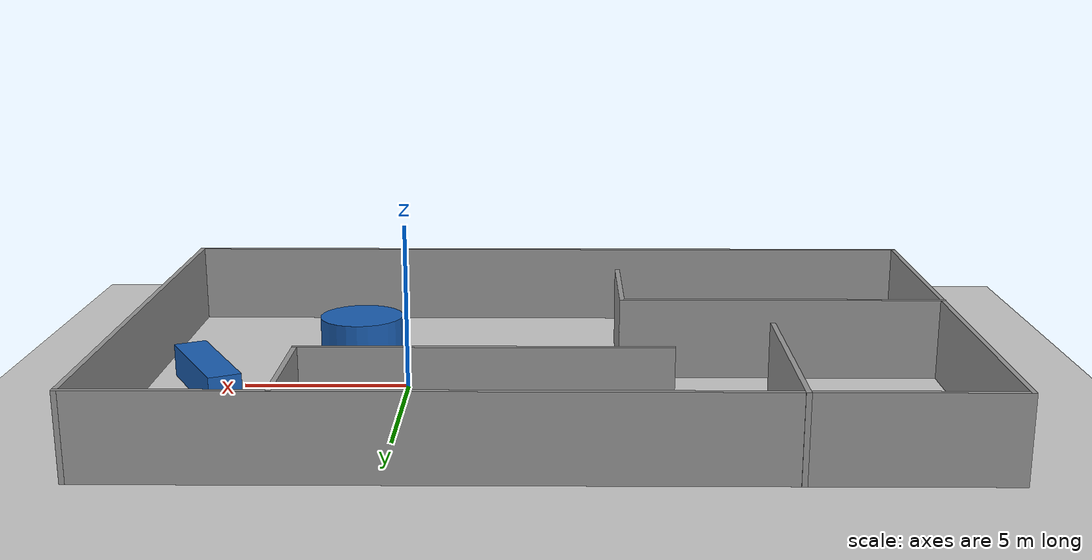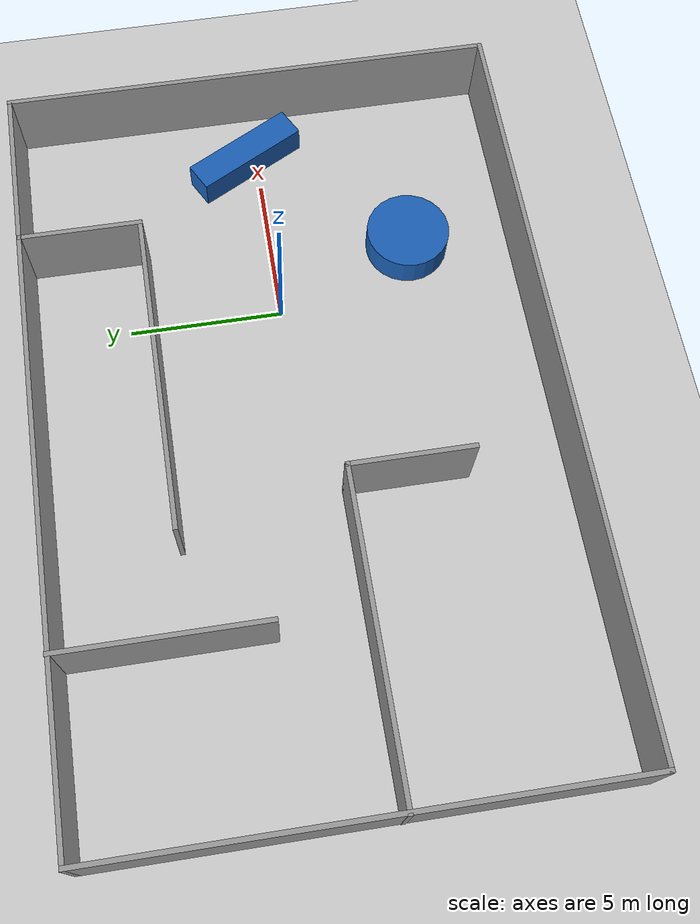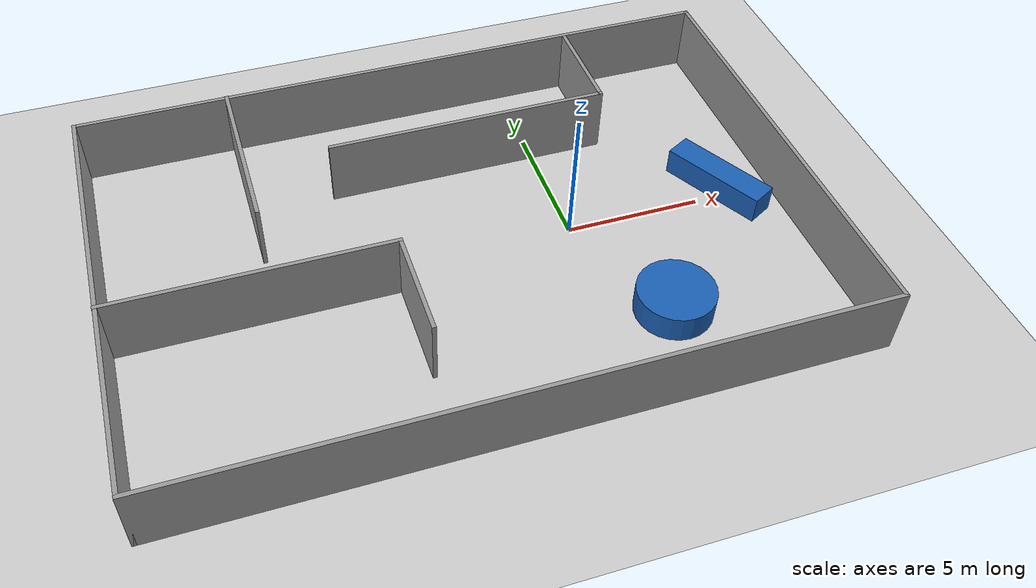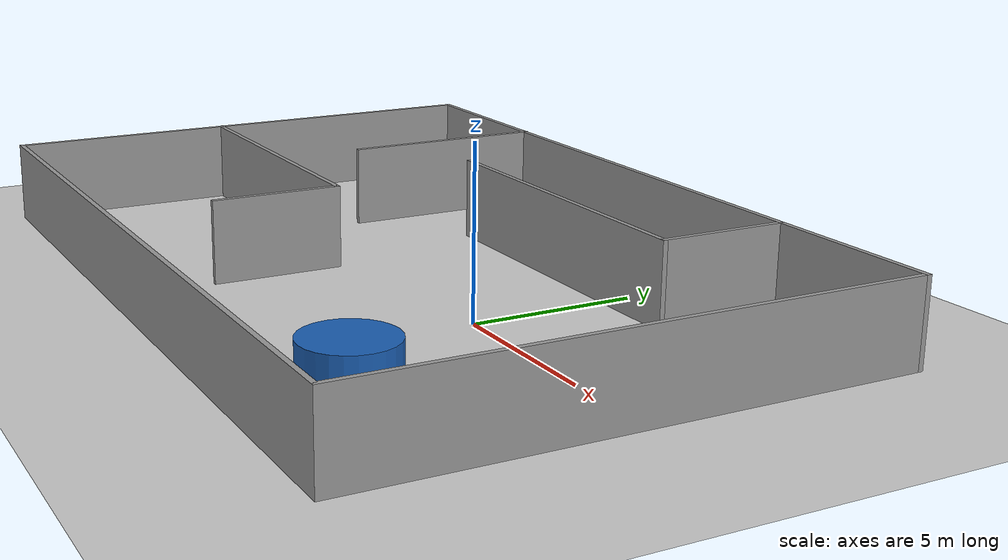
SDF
<sdf version="1.7">
 <world name="default">
  <light name="sun" type="directional">
   <pose>0 0 10 0 -0 0</pose>
   <diffuse>0.8 0.8 0.8 1</diffuse>
   <specular>0.2 0.2 0.2 1</specular>
   <attenuation>
    <range>1000</range>
    <constant>0.9</constant>
    <linear>0.01</linear>
    <quadratic>0.001</quadratic>
   </attenuation>
   <direction>-0.5 0.1 -0.9</direction>
   <spot><inner_angle>0</inner_angle><outer_angle>0</outer_angle><falloff>0</falloff></spot>
  </light>
  <model name="ground_plane">
   <static>1</static>
   <link name="link">
    <collision name="collision">
     <geometry><plane><normal>0 0 1</normal><size>100 100</size></plane></geometry>
     <surface>
      <contact><collide_bitmask>65535</collide_bitmask></contact>
      <friction><ode><mu>100</mu><mu2>50</mu2></ode></friction>
     </surface>
    </collision>
    <visual name="visual">
     <cast_shadows>0</cast_shadows>
     <geometry><plane><normal>0 0 1</normal><size>100 100</size></plane></geometry>
     <material>
      <script><uri>file://media/materials/scripts/gazebo.material</uri><name>Gazebo/Grey</name></script>
     </material>
    </visual>
   </link>
  </model>
  <gravity>0 0 -9.8</gravity>
  <magnetic_field>6e-06 2.3e-05 -4.2e-05</magnetic_field>
  <atmosphere type="adiabatic"/>
  <physics type="ode">
   <ode><solver><iters>100</iters><sor>1.3</sor></solver></ode>
   <max_step_size>0.002</max_step_size>
   <real_time_factor>1</real_time_factor>
   <real_time_update_rate>1000</real_time_update_rate>
  </physics>
  <scene><ambient>0.4 0.4 0.4 1</ambient><background>0.7 0.7 0.7 1</background><shadows>1</shadows></scene>
  <audio><device>default</device></audio>
  <spherical_coordinates>
   <surface_model>EARTH_WGS84</surface_model>
   <latitude_deg>0</latitude_deg>
   <longitude_deg>0</longitude_deg>
   <elevation>0</elevation>
   <heading_deg>0</heading_deg>
  </spherical_coordinates>
  <model name="simple_walls">
   <pose>-4.1815 -0.005065 0 0 -0 0</pose>
   <link name="Wall_1">
    <collision name="Wall_1_Collision">
     <geometry><box><size>24.5 0.15 2.5</size></box></geometry>
     <pose>0 0 1.25 0 -0 0</pose>
    </collision>
    <visual name="Wall_1_Visual">
     <pose>0 0 1.25 0 -0 0</pose>
     <geometry><box><size>24.5 0.15 2.5</size></box></geometry>
     <material>
      <script><uri>file://media/materials/scripts/gazebo.material</uri><name>Gazebo/Grey</name></script>
      <ambient>1 1 1 1</ambient>
     </material>
     <meta><layer>0</layer></meta>
    </visual>
    <pose>0.008207 -8.06068 0 0 -0 0</pose>
   </link>
   <link name="Wall_10">
    <collision name="Wall_10_Collision">
     <geometry><box><size>10 0.15 2.5</size></box></geometry>
     <pose>0 0 1.25 0 -0 0</pose>
    </collision>
    <visual name="Wall_10_Visual">
     <pose>0 0 1.25 0 -0 0</pose>
     <geometry><box><size>10 0.15 2.5</size></box></geometry>
     <material>
      <script><uri>file://media/materials/scripts/gazebo.material</uri><name>Gazebo/Grey</name></script>
      <ambient>1 1 1 1</ambient>
     </material>
     <meta><layer>0</layer></meta>
    </visual>
    <pose>-7.25821 -1.03066 0 0 -0 0</pose>
   </link>
   <link name="Wall_11">
    <collision name="Wall_11_Collision">
     <geometry><box><size>4 0.15 2.5</size></box></geometry>
     <pose>0 0 1.25 0 -0 0</pose>
    </collision>
    <visual name="Wall_11_Visual">
     <pose>0 0 1.25 0 -0 0</pose>
     <geometry><box><size>4 0.15 2.5</size></box></geometry>
     <material>
      <script><uri>file://media/materials/scripts/gazebo.material</uri><name>Gazebo/Grey</name></script>
      <ambient>1 1 1 1</ambient>
     </material>
     <meta><layer>0</layer></meta>
    </visual>
    <pose>-2.33321 -2.95566 0 0 -0 -1.5708</pose>
   </link>
   <link name="Wall_17">
    <collision name="Wall_17_Collision">
     <geometry><box><size>4 0.15 2.5</size></box></geometry>
     <pose>0 0 1.25 0 -0 0</pose>
    </collision>
    <visual name="Wall_17_Visual">
     <pose>0 0 1.25 0 -0 0</pose>
     <geometry><box><size>4 0.15 2.5</size></box></geometry>
     <material>
      <script><uri>file://media/materials/scripts/gazebo.material</uri><name>Gazebo/Grey</name></script>
      <ambient>1 1 1 1</ambient>
     </material>
     <meta><layer>0</layer></meta>
    </visual>
    <pose>6.84423 6.09545 0 0 -0 -1.5708</pose>
   </link>
   <link name="Wall_18">
    <collision name="Wall_18_Collision">
     <geometry><box><size>10.5 0.15 2.5</size></box></geometry>
     <pose>0 0 1.25 0 -0 0</pose>
    </collision>
    <visual name="Wall_18_Visual">
     <pose>0 0 1.25 0 -0 0</pose>
     <geometry><box><size>10.5 0.15 2.5</size></box></geometry>
     <material>
      <script><uri>file://media/materials/scripts/gazebo.material</uri><name>Gazebo/Grey</name></script>
      <ambient>1 1 1 1</ambient>
     </material>
     <meta><layer>0</layer></meta>
    </visual>
    <pose>1.66923 4.17045 0 0 -0 3.14159</pose>
   </link>
   <link name="Wall_2">
    <collision name="Wall_2_Collision">
     <geometry><box><size>16.25 0.15 2.5</size></box></geometry>
     <pose>0 0 1.25 0 -0 0</pose>
    </collision>
    <visual name="Wall_2_Visual">
     <pose>0 0 1.25 0 -0 0</pose>
     <geometry><box><size>16.25 0.15 2.5</size></box></geometry>
     <material>
      <script><uri>file://media/materials/scripts/gazebo.material</uri><name>Gazebo/Grey</name></script>
      <ambient>1 1 1 1</ambient>
     </material>
     <meta><layer>0</layer></meta>
    </visual>
    <pose>12.1832 -0.010678 0 0 -0 1.5708</pose>
   </link>
   <link name="Wall_3">
    <collision name="Wall_3_Collision">
     <geometry><box><size>24.5 0.15 2.5</size></box></geometry>
     <pose>0 0 1.25 0 -0 0</pose>
    </collision>
    <visual name="Wall_3_Visual">
     <pose>0 0 1.25 0 -0 0</pose>
     <geometry><box><size>24.5 0.15 2.5</size></box></geometry>
     <material>
      <script><uri>file://media/materials/scripts/gazebo.material</uri><name>Gazebo/Grey</name></script>
      <ambient>1 1 1 1</ambient>
     </material>
     <meta><layer>0</layer></meta>
    </visual>
    <pose>0.008207 8.03932 0 0 -0 3.14159</pose>
   </link>
   <link name="Wall_5">
    <collision name="Wall_5_Collision">
     <geometry><box><size>16.25 0.15 2.5</size></box></geometry>
     <pose>0 0 1.25 0 -0 0</pose>
    </collision>
    <visual name="Wall_5_Visual">
     <pose>0 0 1.25 0 -0 0</pose>
     <geometry><box><size>16.25 0.15 2.5</size></box></geometry>
     <material>
      <script><uri>file://media/materials/scripts/gazebo.material</uri><name>Gazebo/Grey</name></script>
      <ambient>1 1 1 1</ambient>
     </material>
     <meta><layer>0</layer></meta>
    </visual>
    <pose>-12.1668 -0.010678 0 0 -0 -1.5708</pose>
   </link>
   <link name="Wall_7">
    <collision name="Wall_7_Collision">
     <geometry><box><size>6.5 0.15 2.5</size></box></geometry>
     <pose>0 0 1.25 0 -0 0</pose>
    </collision>
    <visual name="Wall_7_Visual">
     <pose>0 0 1.25 0 -0 0</pose>
     <geometry><box><size>6.5 0.15 2.5</size></box></geometry>
     <material>
      <script><uri>file://media/materials/scripts/gazebo.material</uri><name>Gazebo/Grey</name></script>
      <ambient>1 1 1 1</ambient>
     </material>
     <meta><layer>0</layer></meta>
    </visual>
    <pose>-6.59163 4.88568 0 0 -0 -1.5708</pose>
   </link>
   <static>1</static>
  </model>
  <model name="simple_objects">
   <link name="link_0">
    <inertial>
     <mass>3.90739</mass>
     <inertia><ixx>5.29704</ixx><ixy>0</ixy><ixz>0</ixz><iyy>0.651232</iyy><iyz>0</iyz><izz>5.29704</izz></inertia>
    </inertial>
    <pose>2.0255 2.47846 0 0 -0 0.487153</pose>
    <visual name="visual">
     <geometry><box><size>1 3.9074 1</size></box></geometry>
     <material>
      <lighting>1</lighting>
      <script><uri>file://media/materials/scripts/gazebo.material</uri><name>Gazebo/Grey</name></script>
      <shader type="pixel"><normal_map>__default__</normal_map></shader>
      <ambient>0.102 0.373 0.706 1</ambient>
      <diffuse>0.102 0.373 0.706 1</diffuse>
      <specular>0.102 0.373 0.706 1</specular>
      <emissive>0.102 0.373 0.706 1</emissive>
     </material>
    </visual>
    <collision name="collision">
     <geometry><box><size>1 3.9074 1</size></box></geometry>
     <surface>
      <friction>
       <ode><mu>1</mu><mu2>1</mu2><fdir1>0 0 0</fdir1><slip1>0</slip1><slip2>0</slip2></ode>
       <torsional>
        <coefficient>1</coefficient>
        <patch_radius>0</patch_radius>
        <surface_radius>0</surface_radius>
        <use_patch_radius>1</use_patch_radius>
        <ode><slip>0</slip></ode>
       </torsional>
      </friction>
      <bounce><restitution_coefficient>0</restitution_coefficient><threshold>1e+06</threshold></bounce>
      <contact>
       <collide_without_contact>0</collide_without_contact>
       <collide_without_contact_bitmask>1</collide_without_contact_bitmask>
       <collide_bitmask>1</collide_bitmask>
       <ode>
        <soft_cfm>0</soft_cfm>
        <soft_erp>0.2</soft_erp>
        <kp>1e+13</kp>
        <kd>1</kd>
        <max_vel>0.01</max_vel>
        <min_depth>0</min_depth>
       </ode>
       <bullet>
        <split_impulse>1</split_impulse>
        <split_impulse_penetration_threshold>-0.01</split_impulse_penetration_threshold>
        <soft_cfm>0</soft_cfm>
        <soft_erp>0.2</soft_erp>
        <kp>1e+13</kp>
        <kd>1</kd>
       </bullet>
      </contact>
     </surface>
    </collision>
   </link>
   <link name="link_1">
    <inertial>
     <mass>7.50015</mass>
     <inertia><ixx>4.14075</ixx><ixy>0</ixy><ixz>0</ixz><iyy>4.14075</iyy><iyz>0</iyz><izz>7.03147</izz></inertia>
    </inertial>
    <pose>-2.0255 -2.47846 0 0 -0 0</pose>
    <visual name="visual">
     <geometry><cylinder><radius>1.36931</radius><length>1</length></cylinder></geometry>
     <material>
      <lighting>1</lighting>
      <script><uri>file://media/materials/scripts/gazebo.material</uri><name>Gazebo/Grey</name></script>
      <shader type="pixel"><normal_map>__default__</normal_map></shader>
      <ambient>0.102 0.373 0.706 1</ambient>
      <diffuse>0.102 0.373 0.706 1</diffuse>
      <specular>0.102 0.373 0.706 1</specular>
      <emissive>0.102 0.373 0.706 1</emissive>
     </material>
    </visual>
    <collision name="collision">
     <geometry><cylinder><radius>1.36931</radius><length>1</length></cylinder></geometry>
     <surface>
      <friction>
       <ode><mu>1</mu><mu2>1</mu2><fdir1>0 0 0</fdir1><slip1>0</slip1><slip2>0</slip2></ode>
       <torsional>
        <coefficient>1</coefficient>
        <patch_radius>0</patch_radius>
        <surface_radius>0</surface_radius>
        <use_patch_radius>1</use_patch_radius>
        <ode><slip>0</slip></ode>
       </torsional>
      </friction>
      <bounce><restitution_coefficient>0</restitution_coefficient><threshold>1e+06</threshold></bounce>
      <contact>
       <collide_without_contact>0</collide_without_contact>
       <collide_without_contact_bitmask>1</collide_without_contact_bitmask>
       <collide_bitmask>1</collide_bitmask>
       <ode>
        <soft_cfm>0</soft_cfm>
        <soft_erp>0.2</soft_erp>
        <kp>1e+13</kp>
        <kd>1</kd>
        <max_vel>0.01</max_vel>
        <min_depth>0</min_depth>
       </ode>
       <bullet>
        <split_impulse>1</split_impulse>
        <split_impulse_penetration_threshold>-0.01</split_impulse_penetration_threshold>
        <soft_cfm>0</soft_cfm>
        <soft_erp>0.2</soft_erp>
        <kp>1e+13</kp>
        <kd>1</kd>
       </bullet>
      </contact>
     </surface>
    </collision>
   </link>
   <static>0</static>
   <pose>4.00572 -2.08395 0.5 0 -0 0</pose>
  </model>
 </world>
</sdf>
